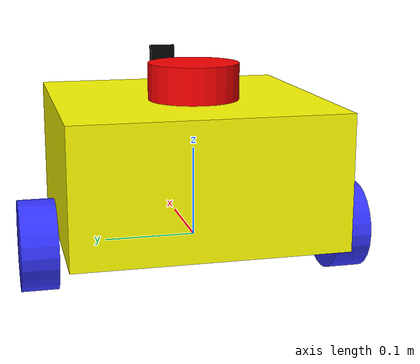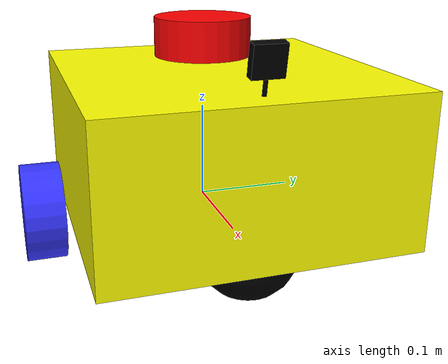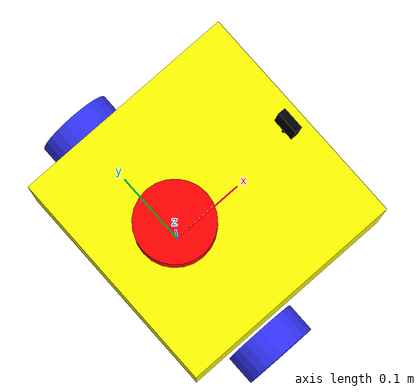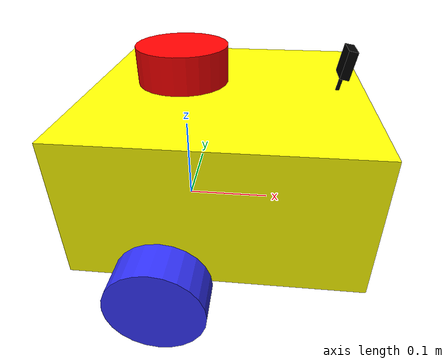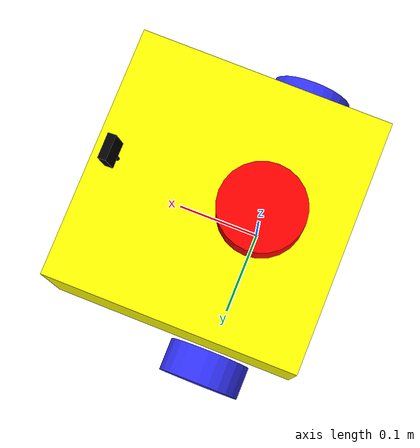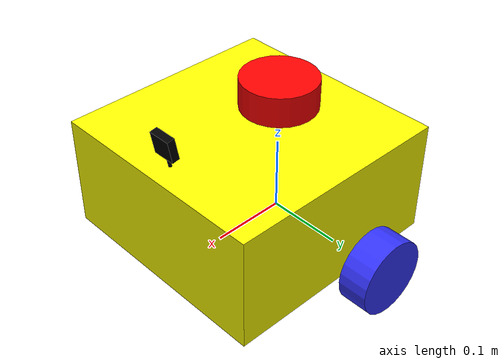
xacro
<?xml version="1.0"?>
<robot xmlns:xacro="http://www.ros.org/wiki/xacro"  name="robot">

    <xacro:arg name="use_ros2_control" default="true" />
    <xacro:arg name="use_sensor_fusion" default="true" />
    <xacro:property name="use_ros2_control" value="$(arg use_ros2_control)" />
    <xacro:property name="use_sensor_fusion" value="$(arg use_sensor_fusion)" />

    <xacro:include filename="robot_core.xacro" />
    <xacro:include filename="gazebo_control.xacro"/>
    <xacro:include filename="ros2_control.xacro" />
    <xacro:include filename="lidar.xacro"/>
    <xacro:include filename="rgb_camera.xacro"/>
    <xacro:include filename="depth_camera.xacro"/>
    <xacro:include filename="imu_sensor.xacro" />

    <xacro:add_ros2_control
      left_joint="left_wheel_joint"
      right_joint="right_wheel_joint"
      use_ros2_control="${use_ros2_control}"
      use_sensor_fusion="${use_sensor_fusion}" />

</robot>

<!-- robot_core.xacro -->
<robot xmlns:xacro="http://www.ros.org/wiki/xacro" name="robot">

    <xacro:include filename="inertial_macros.xacro" />

    <material name="white">
        <color rgba="1 1 1 1" />
    </material>

    <material name="orange">
        <color rgba="1 0.3 0.1 1" />
    </material>

    <material name="yellow">
        <color rgba="1 1 0 1" />
    </material>

    <material name="blue">
        <color rgba="0.2 0.2 1 1" />
    </material>

    <material name="black">
        <color rgba="0 0 0 1" />
    </material>

    <!-- BASE LINK -->

    <link name="base_link"> </link>

    <!-- BASE FOOTPRINT -->

    <joint name="base_footprint_joint" type="fixed">
        <parent link="base_link" />
        <child link="base_footprint" />
        <origin xyz="0.0 0.0 0.0" rpy="0.0 0.0 0.0" />
    </joint>

    <link name="base_footprint"> </link>

    <!-- CHASSIS LINK -->

    <joint name="chassis_joint" type="fixed">
        <parent link="base_link" />
        <child link="chassis" />
        <origin xyz="-0.1 0 0" />
    </joint>

    <link name="chassis">
        <visual>
            <origin xyz="0.15 0 0.075" />
            <geometry>
                <box size="0.3 0.3 0.15" />
            </geometry>
            <material name="yellow" />
        </visual>
        <collision>
            <origin xyz="0.15 0 0.075" />
            <geometry>
                <box size="0.3 0.3 0.15" />
            </geometry>
        </collision>
        <xacro:inertial_box mass="0.5" x="0.3" y="0.3" z="0.15">
            <origin xyz="0.15 0 0.075" rpy="0 0 0" />
        </xacro:inertial_box>
    </link>

    <!-- LEFT WHEEL LINK -->

    <joint name="left_wheel_joint" type="continuous">
        <parent link="base_link" />
        <child link="left_wheel" />
        <origin xyz="0 0.175 0" rpy="-${pi/2} 0 0" />
        <axis xyz="0 0 1" />
        <limit effort="0.05" velocity="10.0" />
    </joint>

    <link name="left_wheel">
        <visual>
            <geometry>
                <cylinder radius="0.05" length="0.04" />
            </geometry>
            <material name="blue" />
        </visual>
        <collision>
            <geometry>
                <sphere radius="0.05" />
            </geometry>
        </collision>
        <xacro:inertial_cylinder mass="0.1" length="0.04" radius="0.05">
            <origin xyz="0 0 0" rpy="0 0 0" />
        </xacro:inertial_cylinder>
    </link>

    <!-- RIGHT WHEEL LINK -->

    <joint name="right_wheel_joint" type="continuous">
        <parent link="base_link" />
        <child link="right_wheel" />
        <origin xyz="0 -0.175 0" rpy="+${pi/2} 0 0" />
        <axis xyz="0 0 -1" />
        <limit effort="0.05" velocity="10.0" />
    </joint>

    <link name="right_wheel">
        <visual>
            <geometry>
                <cylinder radius="0.05" length="0.04" />
            </geometry>
            <material name="blue" />
        </visual>
        <collision>
            <geometry>
                <sphere radius="0.05" />
            </geometry>
        </collision>
        <xacro:inertial_cylinder mass="0.1" length="0.04" radius="0.05">
            <origin xyz="0 0 0" rpy="0 0 0" />
        </xacro:inertial_cylinder>
    </link>

    <!-- CASTER WHEEL LINK -->

    <joint name="caster_wheel_joint" type="fixed">
        <parent link="chassis" />
        <child link="caster_wheel" />
        <origin xyz="0.24 0 0" />
    </joint>

    <link name="caster_wheel">
        <visual>
            <geometry>
                <sphere radius="0.05" />
            </geometry>
            <material name="black" />
        </visual>
        <collision>
            <geometry>
                <sphere radius="0.05" />
            </geometry>
            <surface>
                <friction>
                    <ode>
                        <mu>0.001</mu>
                        <mu2>0.001</mu2>
                    </ode>
                </friction>
            </surface>
        </collision>
        <xacro:inertial_sphere mass="0.1" radius="0.05">
            <origin xyz="0 0 0" rpy="0 0 0" />
        </xacro:inertial_sphere>
    </link>

    <gazebo reference="caster_wheel">
        <mu1 value="0.0" />
        <mu2 value="0.0" />
    </gazebo>

</robot>

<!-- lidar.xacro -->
<robot xmlns:xacro="http://www.ros.org/wiki/xacro">

    <material name="red">
        <color rgba="1.0 0.0 0.0 1.0" />
    </material>

    <joint name="laser_joint" type="fixed">
        <parent link="chassis" />
        <child link="laser_frame" />
        <origin xyz="0.1 0 0.175" rpy="0 0 0" />
    </joint>

    <link name="laser_frame">
        <visual>
            <geometry>
                <cylinder radius="0.05" length="0.04" />
            </geometry>
            <material name="red" />
        </visual>

        <collision>
            <geometry>
                <cylinder radius="0.05" length="0.04" />
            </geometry>
        </collision>
        <xacro:inertial_cylinder mass="0.1" length="0.04" radius="0.05">
            <origin xyz="0 0 0" rpy="0 0 0" />
        </xacro:inertial_cylinder>
    </link>

    <gazebo reference="laser_frame">

        <sensor name="laser" type="gpu_lidar">
            <pose> 0 0 0 0 0 0 </pose>
            <visualize>false</visualize>
            <update_rate>10</update_rate>
            <!-- VLP-16 -->
            <lidar>
                <scan>
                    <horizontal>
                        <samples>900</samples>
                        <resolution>1</resolution>
                        <min_angle>-3.14</min_angle>
                        <max_angle>3.14</max_angle>
                    </horizontal>
                    <vertical>
                        <samples>16</samples>
                        <resolution>1</resolution>
                        <min_angle>-0.262</min_angle>
                        <max_angle>0.262</max_angle>
                    </vertical>
                </scan>
                <range>
                    <min>0.3</min>
                    <max>20</max>
                    <resolution>0.01</resolution>
                </range>
                <noise type="gaussian">
                    <mean>0.0</mean>
                    <stddev>0.01</stddev>
                </noise>
            </lidar>
            <!-- RP  -->
            <topic>scan</topic>
            <gz_frame_id>laser_frame</gz_frame_id>
        </sensor>
    </gazebo>

</robot>

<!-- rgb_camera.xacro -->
<robot xmlns:xacro="http://www.ros.org/wiki/xacro">

    <joint name="rgb_camera_joint" type="fixed">
        <parent link="chassis" />
        <child link="rgb_camera_link" />
        <origin xyz="0.276 0.0 0.181" rpy="0.0 0.18 0.0" />
    </joint>

    <link name="rgb_camera_link">
        <visual>
            <geometry>
                <box size="0.010 0.030 0.030" />
            </geometry>
            <material name="black" />
        </visual>
        <visual>
            <origin xyz="0.0 0.0 -0.05" />
            <geometry>
                <cylinder radius="0.002" length="0.1" />
            </geometry>
            <material name="black" />
        </visual>
    </link>

    <joint name="rgb_camera_optical_joint" type="fixed">
        <parent link="rgb_camera_link" />
        <child link="rgb_camera_link_optical" />
        <origin xyz="0.0 0.0 0.0" rpy="${-pi/2} 0 ${-pi/2}" />
    </joint>

    <link name="rgb_camera_link_optical"> </link>

    <gazebo reference="rgb_camera_link">
        <sensor name="camera" type="camera">
            <pose> 0 0 0 0 0 0 </pose>
            <visualize>true</visualize>
            <update_rate>30</update_rate>
            <camera>
                <camera_info_topic>camera/camera_info</camera_info_topic>
                <horizontal_fov>1.089</horizontal_fov>
                <image>
                    <format>R8G8B8</format>
                    <width>640</width>
                    <height>480</height>
                </image>
                <clip>
                    <near>0.05</near>
                    <far>120.0</far>
                </clip>
            </camera>
            <topic>camera/image_raw</topic>
            <gz_frame_id>rgb_camera_link_optical</gz_frame_id>
        </sensor>
    </gazebo>

</robot>

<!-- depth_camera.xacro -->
<robot xmlns:xacro="http://www.ros.org/wiki/xacro">

    <joint name="depth_camera_joint" type="fixed">
        <parent link="chassis" />
        <child link="depth_camera_link" />
        <origin xyz="0.276 0.0 0.181" rpy="0.0 0.18 0.0" />
    </joint>

    <link name="depth_camera_link">
        <visual>
            <geometry>
                <box size="0.010 0.030 0.030" />
            </geometry>
            <material name="black" />
        </visual>
        <visual>
            <origin xyz="0.0 0.0 -0.05" />
            <geometry>
                <cylinder radius="0.002" length="0.1" />
            </geometry>
            <material name="black" />
        </visual>
    </link>

    <joint name="depth_camera_optical_joint" type="fixed">
        <parent link="depth_camera_link" />
        <child link="depth_camera_link_optical" />
        <origin xyz="0.0 0.0 0.0" rpy="${-pi/2} 0 ${-pi/2}" />
    </joint>

    <link name="depth_camera_link_optical"> </link>

    <gazebo reference="depth_camera_link">
        <sensor name="depth_camera" type="depth">
            <pose> 0 0 0 0 0 0 </pose>
            <visualize>true</visualize>
            <update_rate>10</update_rate>
            <camera>
                <camera_info_topic>camera/camera_info</camera_info_topic>
                <horizontal_fov>1.089</horizontal_fov>
                <image>
                    <format>R8G8B8</format>
                    <width>640</width>
                    <height>480</height>
                </image>
                <clip>
                    <near>0.05</near>
                    <far>8.0</far>
                </clip>
            </camera>
            <topic>depth_camera/points</topic>
            <gz_frame_id>depth_camera_link_optical</gz_frame_id>
        </sensor>
    </gazebo>

</robot>

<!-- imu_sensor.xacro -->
<robot xmlns:xacro="http://www.ros.org/wiki/xacro">

<!-- ADD NOISE -->

  <link name="imu_link">
    <inertial>
      <origin xyz="0 0 0" rpy="0 0 0" />
      <mass value="0.01" />
      <inertia ixx="1e-5" ixy="0" ixz="0" iyy="1e-5" iyz="0" izz="1e-5" />
    </inertial>

  </link>

  <joint name="imu_joint" type="fixed">
    <parent link="chassis" />
    <child link="imu_link" />
    <origin xyz="0 0 0" rpy="0 0 0" />
  </joint>

  <gazebo reference="imu_link">
    <sensor name="imu_sensor" type="imu">
      <always_on>true</always_on>
      <update_rate>100</update_rate>
      <visualize>false</visualize>
      <topic>imu</topic>
    </sensor>
  </gazebo>

</robot>
